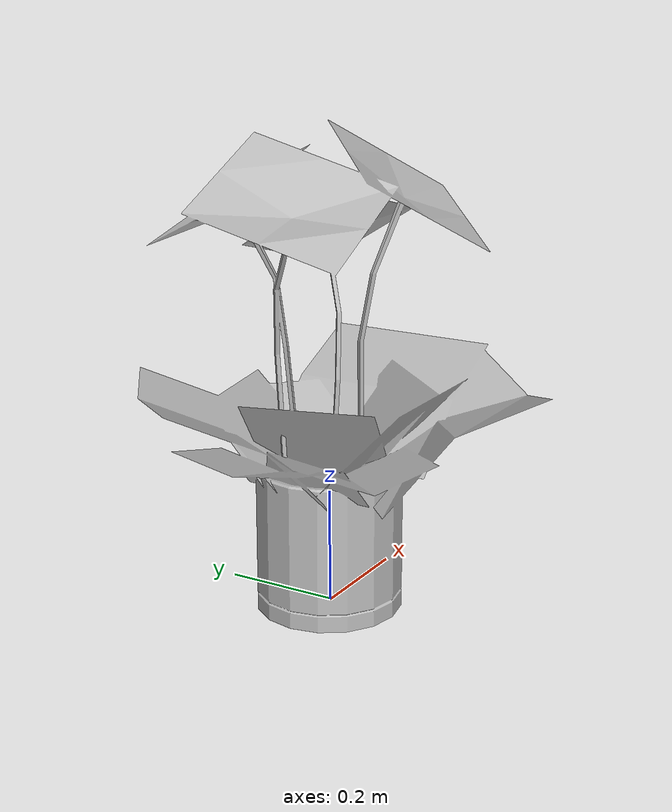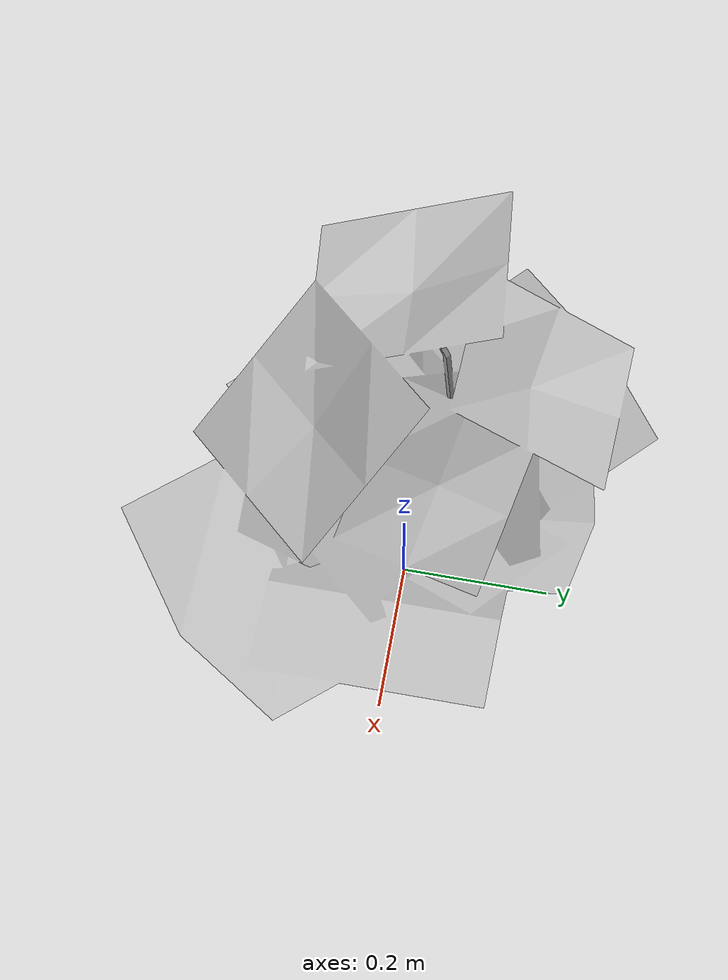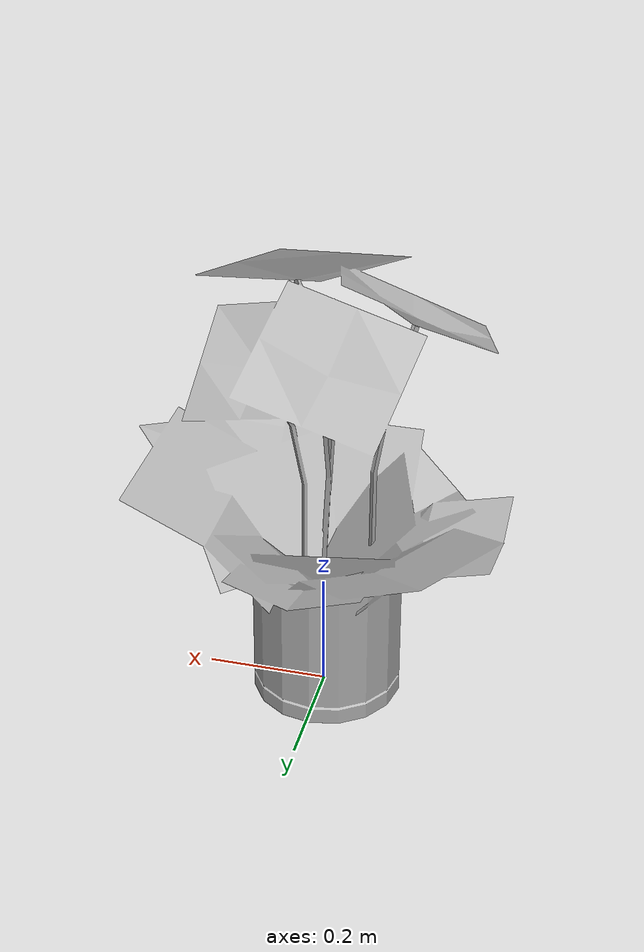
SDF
<?xml version='1.0'?>
<sdf version='1.4'>
  <model name='738'>
    <pose>0 0 0 0 0 0</pose>
    <static>true</static>
    <link name='link'>
      <collision name='collision'>
        <pose>0 0 0 0 0 0</pose>
        <geometry>
          <box>
            <size>0.661424 0.66645 2</size>
          </box>
        </geometry>
      </collision>
      <visual name='visual'>
        <pose>0 0 0 0 0 0</pose>
        <geometry>
          <mesh><uri>model://738/738.dae</uri></mesh>
        </geometry>
      </visual>
    </link>
  </model>
</sdf>
